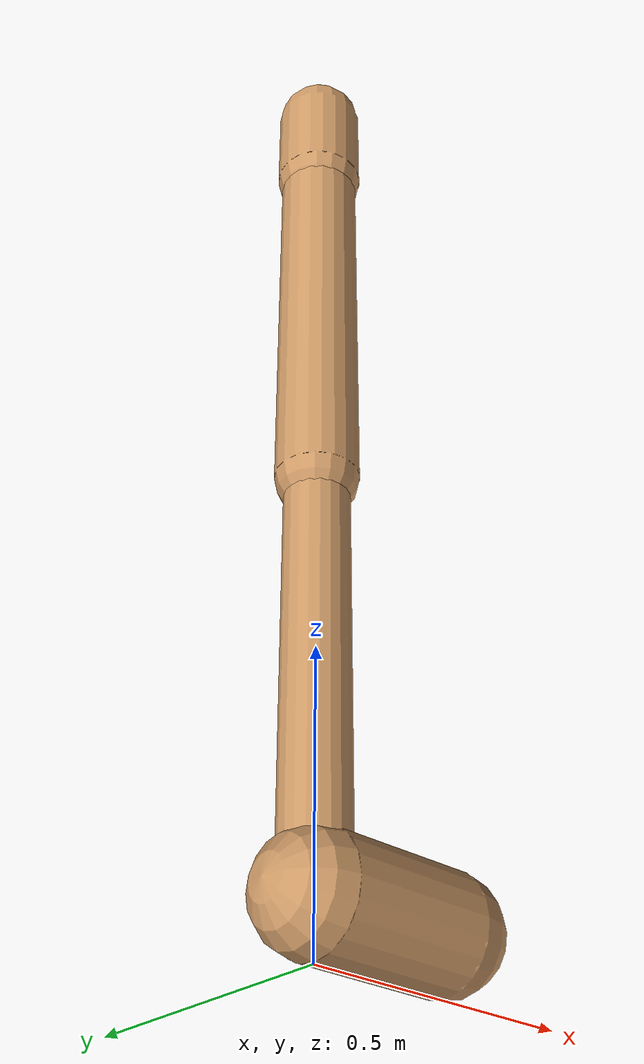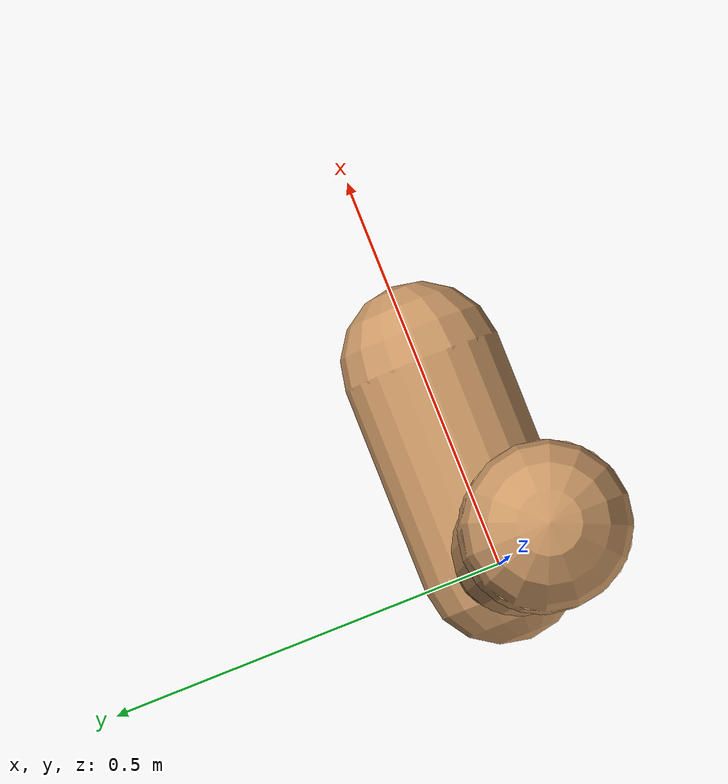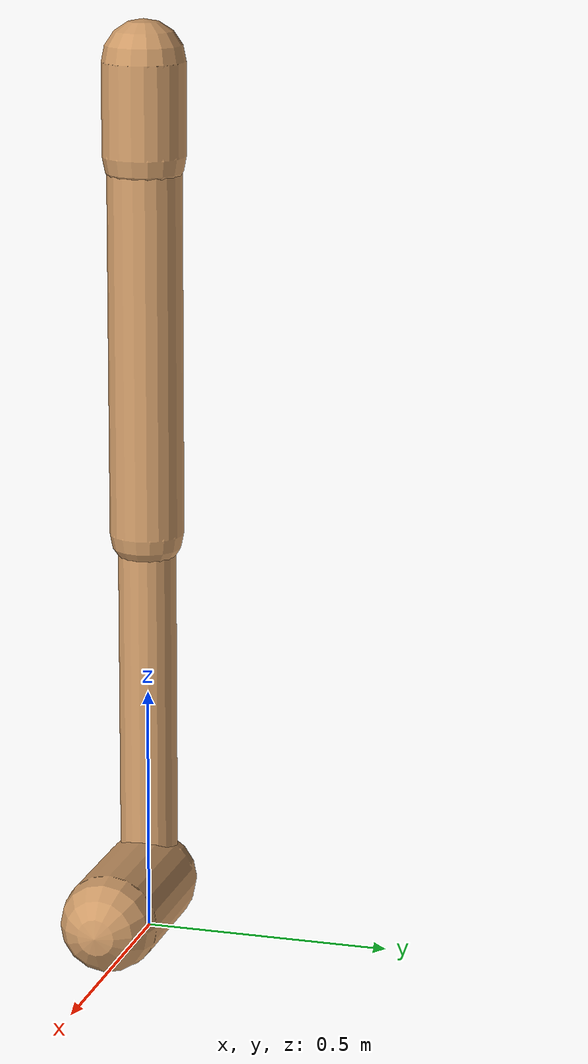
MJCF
<mujoco model="walker2d">
    <compiler angle="degree" coordinate="global" inertiafromgeom="true" />
    <default>
        <joint armature="0.01" damping=".1" limited="true" />
        <geom conaffinity="0" condim="3" contype="1" density="1000" friction="0.8 .1 .1" rgba="0.8 0.6 .4 1" />
    </default>
    <option integrator="RK4" timestep="0.002" />
    <worldbody>
        <body name="torso">
            <geom fromto="0 0 1.778 0 0 1.5931" name="torso_geom" size="0.0829" type="capsule" />
            <body name="thigh">
                <joint axis="0 -1 0" name="thigh_joint" pos="0 0 1.5931" range="-60 60" type="hinge" />
                <geom fromto="0 0 1.5931 0 0 0.8335" name="thigh_geom" size="0.0743" type="capsule" />
                <body name="leg">
                    <joint axis="0 -1 0" name="leg_joint" pos="0 0 0.8335" range="-150 0" type="hinge" />
                    <geom fromto="0 0 0.8335 0 0 0.1" name="leg_geom" size="0.0581" type="capsule" />
                    <body name="foot">
                        <joint axis="0 -1 0" name="foot_joint" pos="0 0 0.1" range="-45 45" type="hinge" />
                        <geom fromto="0 0 0.1 0.2592 0 0.1" name="foot_geom" size="0.0979" type="capsule" />
                    </body>
                </body>
            </body>
            <body name="thigh_left">
                <joint axis="0 -1 0" name="thigh_left_joint" pos="0 0 1.5931" range="-60 60" type="hinge" />
                <geom fromto="0 0 1.5931 0 0 0.8335" name="thigh_left_geom" rgba=".7 .3 .6 1" size="0.0743" type="capsule" />
                <body name="leg_left">
                    <joint axis="0 -1 0" name="leg_left_joint" pos="0 0 0.8335" range="-150 0" type="hinge" />
                    <geom fromto="0 0 0.8335 0 0 0.1" name="leg_left_geom" rgba=".7 .3 .6 1" size="0.0581" type="capsule" />
                    <body name="foot_left">
                        <joint axis="0 -1 0" name="foot_left_joint" pos="0 0 0.1" range="-45 45" type="hinge" />
                        <geom fromto="0 0 0.1 0.2592 0 0.1" name="foot_left_geom" rgba=".7 .3 .6 1" size="0.0979" type="capsule" />
                    </body>
                </body>
            </body>
        </body>
    </worldbody>
    <actuator>
        <motor ctrllimited="true" ctrlrange="-1.0 1.0" gear="100" joint="thigh_joint" />
        <motor ctrllimited="true" ctrlrange="-1.0 1.0" gear="100" joint="leg_joint" />
        <motor ctrllimited="true" ctrlrange="-1.0 1.0" gear="100" joint="foot_joint" />
        <motor ctrllimited="true" ctrlrange="-1.0 1.0" gear="100" joint="thigh_left_joint" />
        <motor ctrllimited="true" ctrlrange="-1.0 1.0" gear="100" joint="leg_left_joint" />
        <motor ctrllimited="true" ctrlrange="-1.0 1.0" gear="100" joint="foot_left_joint" />
    </actuator>
</mujoco>
